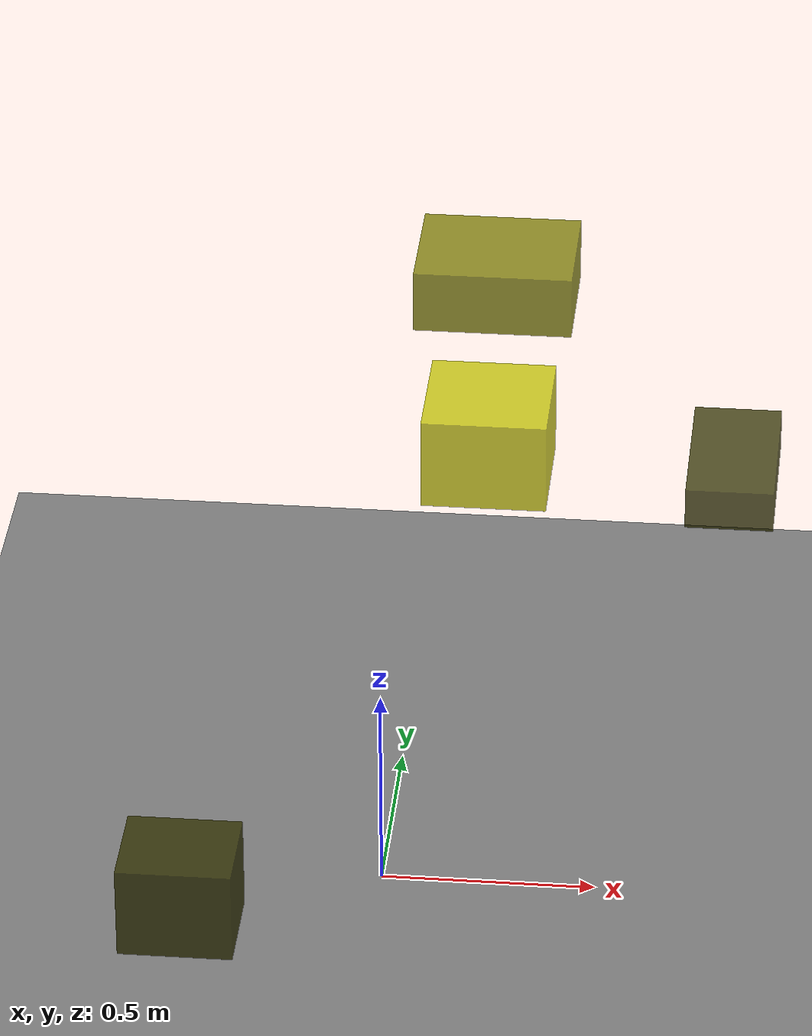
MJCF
<?xml version="1.0"?>
<mujoco model="obstacle_scene">
  <compiler angle="radian" coordinate="local"/>
  <option timestep="0.001" gravity="0 0 -9.81"/>

  <asset>
    <material name="obstacle_mat" rgba="0.8 0.8 0.0 0.8"/>
    <material name="ground_mat" rgba="0.5 0.5 0.5 1"/>
  </asset>

  <worldbody>
    <!-- Ground plane -->
    <geom name="ground" type="plane" size="3 3 0.1" material="ground_mat"/>

    <!-- Obstacles -->
    <body name="obstacle_0" pos="0.785022 0.323247 0.967718">
      <geom name="obs_0" type="box" size="0.100509 0.185098 0.049117" rgba="0.2 0.2 0.0 0.8"/>
    </body>
    <body name="obstacle_1" pos="0.195356 0.845413 1.151213">
      <geom name="obs_1" type="box" size="0.185737 0.145332 0.075417" rgba="0.5 0.5 0.0 0.8"/>
    </body>
    <body name="obstacle_2" pos="0.211505 0.429944 0.960856">
      <geom name="obs_2" type="box" size="0.144531 0.144531 0.109941" rgba="0.8 0.8 0.0 0.8"/>
    </body>
    <body name="obstacle_3" pos="-0.351382 -0.855172 0.549202">
      <geom name="obs_3" type="box" size="0.126614 0.109176 0.107506" rgba="0.2 0.2 0.0 0.8"/>
    </body>
  </worldbody>
</mujoco>
